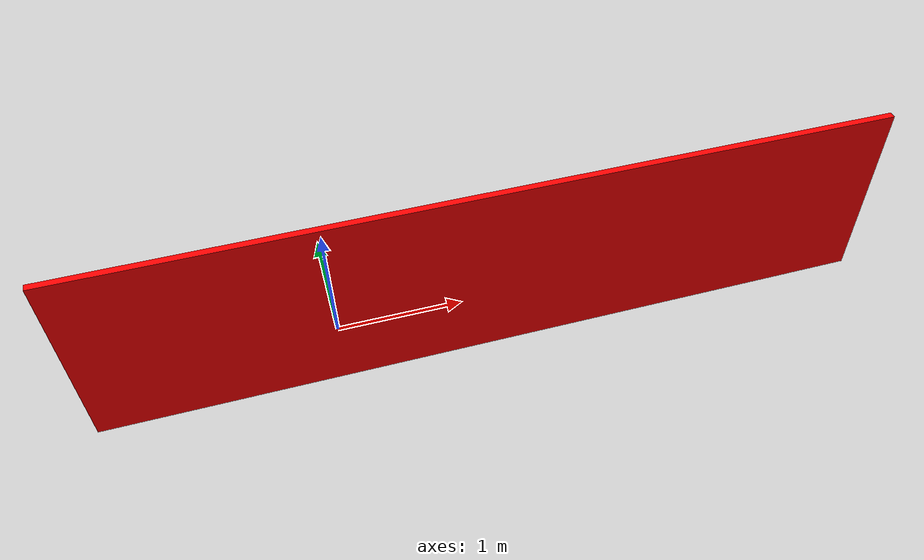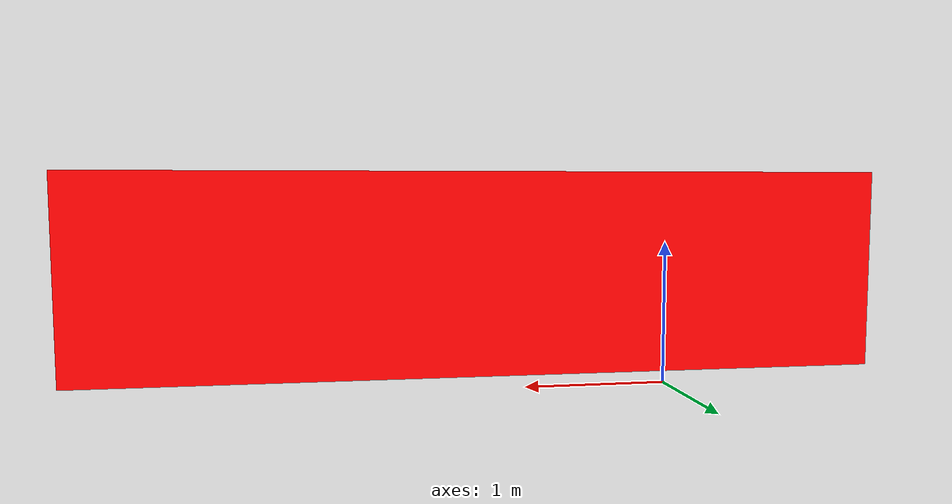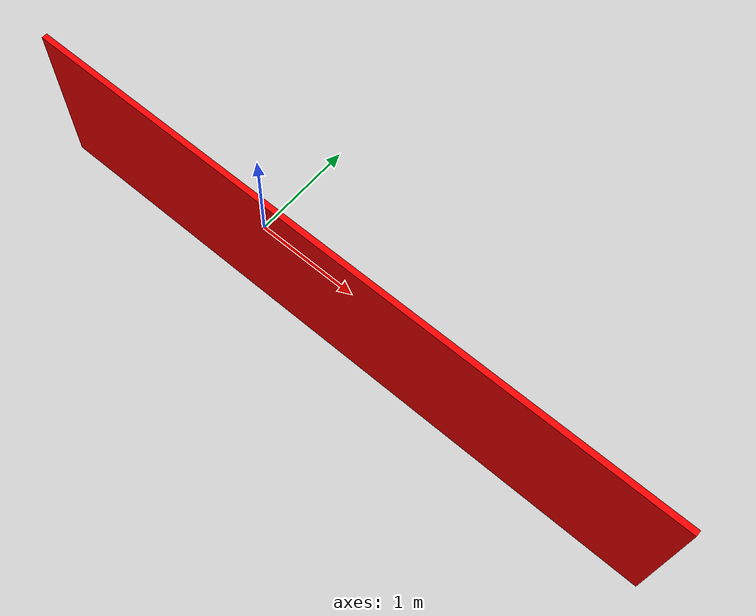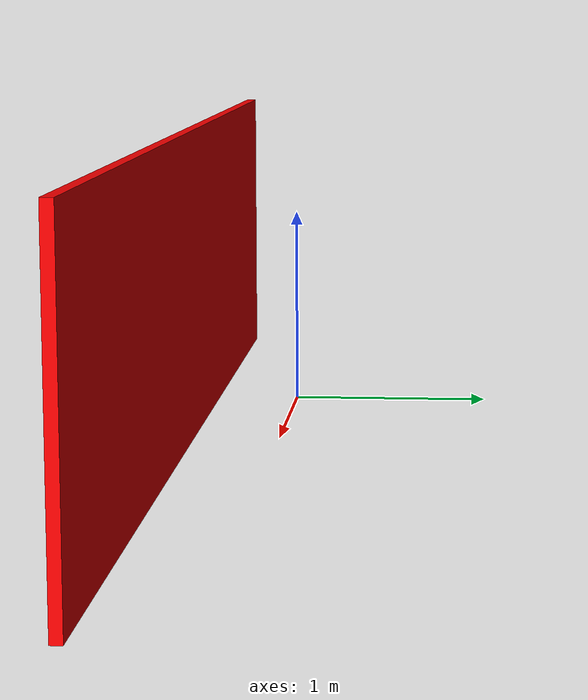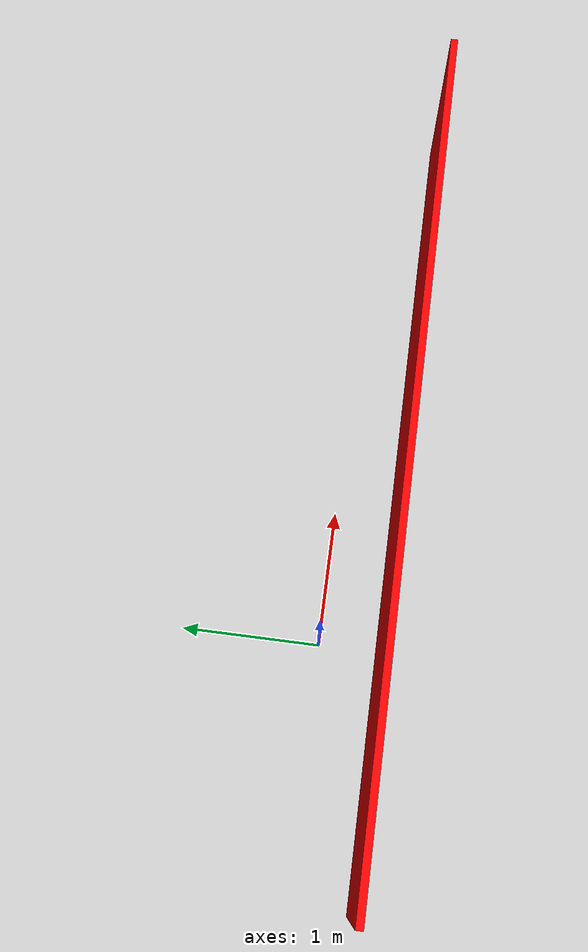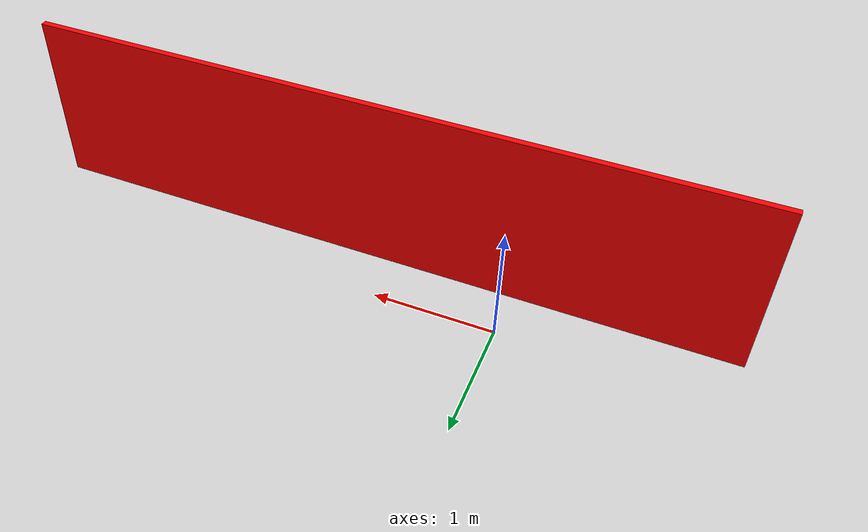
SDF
<?xml version='1.0'?>
<sdf version='1.6'>
  <model name='red_line'>
    <pose frame=''>1.185 -0.44 0 0 -0 0</pose>
    <link name='Wall_0'>
      <collision name='Wall_0_Collision'>
        <geometry>
          <box>
            <size>6 0.05 1.5</size>
          </box>
        </geometry>
        <pose frame=''>0 0 0.75 0 -0 0</pose>
      </collision>
      <visual name='Wall_0_Visual'>
        <pose frame=''>0 0 0.75 0 -0 0</pose>
        <geometry>
          <box>
            <size>6 0.05 1.5</size>
          </box>
        </geometry>
        <material>
          <script>
            <uri>file://media/materials/scripts/gazebo.material</uri>
            <name>Gazebo/Grey</name>
          </script>
          <ambient>1 0 0 1</ambient>
        </material>
      </visual>
      <pose frame=''>0 0 0 0 -0 3.14159</pose>
    </link>
    <static>1</static>
  </model>
</sdf>
